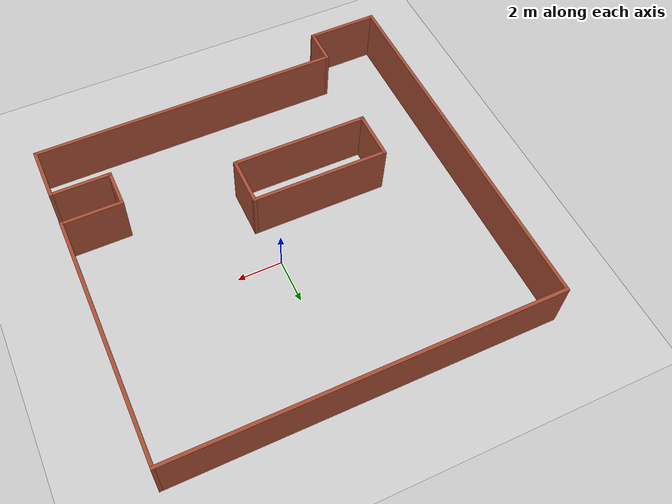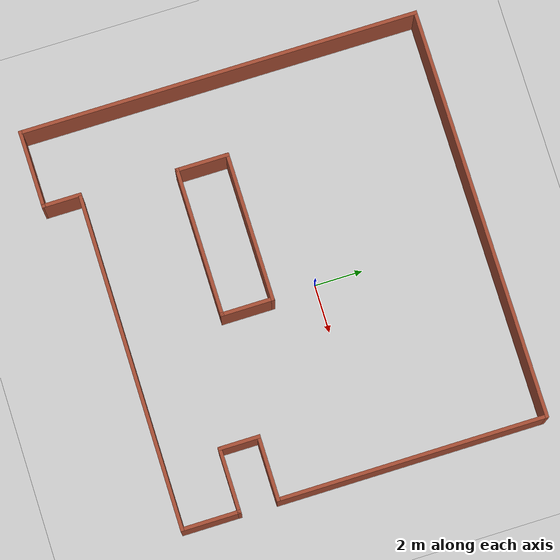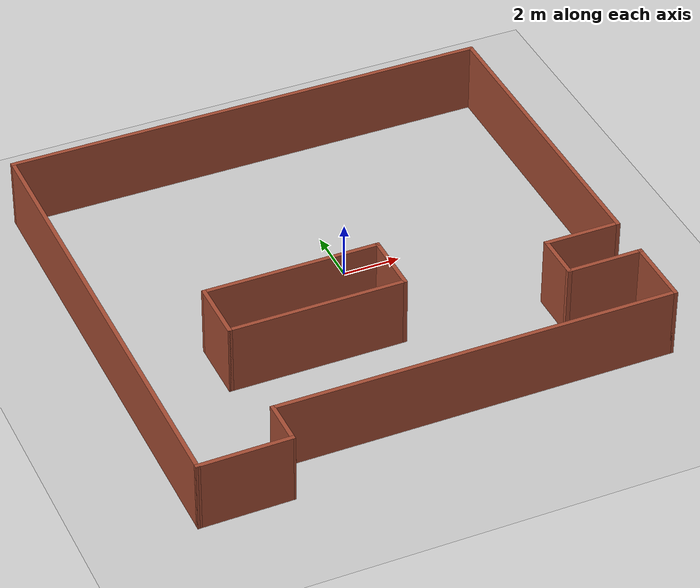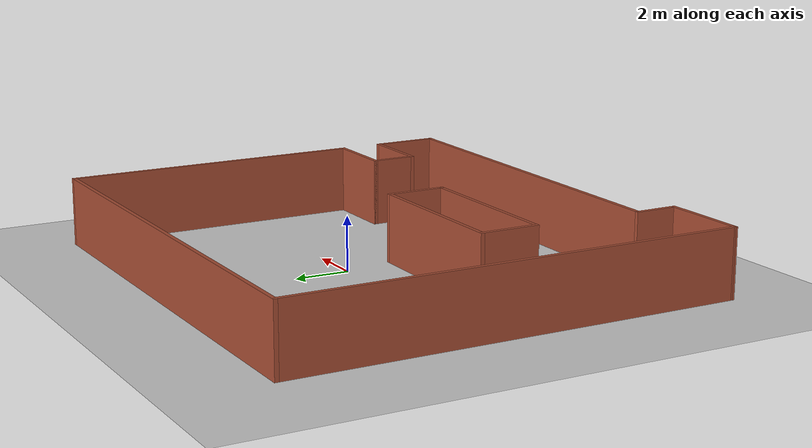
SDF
<sdf version="1.6">
 <world name="default">
  <light name="sun" type="directional">
   <pose>0 0 10 0 -0 0</pose>
   <diffuse>0.8 0.8 0.8 1</diffuse>
   <specular>0.2 0.2 0.2 1</specular>
   <attenuation>
    <range>1000</range>
    <constant>0.9</constant>
    <linear>0.01</linear>
    <quadratic>0.001</quadratic>
   </attenuation>
   <direction>-0.5 0.1 -0.9</direction>
  </light>
  <model name="ground_plane">
   <static>1</static>
   <link name="link">
    <collision name="collision">
     <geometry><plane><normal>0 0 1</normal><size>100 100</size></plane></geometry>
     <surface><friction><ode><mu>100</mu><mu2>50</mu2></ode></friction></surface>
    </collision>
    <visual name="visual">
     <cast_shadows>0</cast_shadows>
     <geometry><plane><normal>0 0 1</normal><size>100 100</size></plane></geometry>
     <material>
      <script><uri>file://media/materials/scripts/gazebo.material</uri><name>Gazebo/Grey</name></script>
     </material>
    </visual>
   </link>
  </model>
  <gravity>0 0 -9.8</gravity>
  <magnetic_field>6e-06 2.3e-05 -4.2e-05</magnetic_field>
  <atmosphere type="adiabatic"/>
  <physics name="default_physics" default="0" type="ode">
   <max_step_size>0.001</max_step_size>
   <real_time_factor>1</real_time_factor>
   <real_time_update_rate>1000</real_time_update_rate>
  </physics>
  <scene><ambient>0.4 0.4 0.4 1</ambient><background>0.7 0.7 0.7 1</background><shadows>1</shadows></scene>
  <spherical_coordinates>
   <surface_model>EARTH_WGS84</surface_model>
   <latitude_deg>0</latitude_deg>
   <longitude_deg>0</longitude_deg>
   <elevation>0</elevation>
   <heading_deg>0</heading_deg>
  </spherical_coordinates>
  <model name="room">
   <pose>-0.522336 -1.24701 0 0 -0 0</pose>
   <link name="Wall_10">
    <collision name="Wall_10_Collision">
     <geometry><box><size>17.25 0.15 2.5</size></box></geometry>
     <pose>0 0 1.25 0 -0 0</pose>
    </collision>
    <visual name="Wall_10_Visual">
     <pose>0 0 1.25 0 -0 0</pose>
     <geometry><box><size>17.25 0.15 2.5</size></box></geometry>
     <material>
      <script><uri>file://media/materials/scripts/gazebo.material</uri><name>Gazebo/Bricks</name></script>
      <ambient>1 1 1 1</ambient>
     </material>
     <meta><layer>0</layer></meta>
    </visual>
    <pose>0.000336 8.30036 0 0 -0 3.14159</pose>
   </link>
   <link name="Wall_11">
    <collision name="Wall_11_Collision">
     <geometry><box><size>16.75 0.15 2.5</size></box></geometry>
     <pose>0 0 1.25 0 -0 0</pose>
    </collision>
    <visual name="Wall_11_Visual">
     <pose>0 0 1.25 0 -0 0</pose>
     <geometry><box><size>16.75 0.15 2.5</size></box></geometry>
     <material>
      <script><uri>file://media/materials/scripts/gazebo.material</uri><name>Gazebo/Bricks</name></script>
      <ambient>1 1 1 1</ambient>
     </material>
     <meta><layer>0</layer></meta>
    </visual>
    <pose>-8.54966 0.000364 0 0 0 -1.5708</pose>
   </link>
   <link name="Wall_12">
    <collision name="Wall_12_Collision">
     <geometry><box><size>3.28063 0.15 2.5</size></box></geometry>
     <pose>0 0 1.25 0 -0 0</pose>
    </collision>
    <visual name="Wall_12_Visual">
     <pose>0 0 1.25 0 -0 0</pose>
     <geometry><box><size>3.28063 0.15 2.5</size></box></geometry>
     <material>
      <script><uri>file://media/materials/scripts/gazebo.material</uri><name>Gazebo/Bricks</name></script>
      <ambient>1 1 1 1</ambient>
     </material>
     <meta><layer>0</layer></meta>
    </visual>
    <pose>-6.98437 -8.28434 0 0 -0 0.009771</pose>
   </link>
   <link name="Wall_15">
    <collision name="Wall_15_Collision">
     <geometry><box><size>1.67 0.15 2.5</size></box></geometry>
     <pose>0 0 1.25 0 -0 0</pose>
    </collision>
    <visual name="Wall_15_Visual">
     <pose>0 0 1.25 0 -0 0</pose>
     <geometry><box><size>1.67 0.15 2.5</size></box></geometry>
     <material>
      <script><uri>file://media/materials/scripts/gazebo.material</uri><name>Gazebo/Bricks</name></script>
      <ambient>1 1 1 1</ambient>
     </material>
     <meta><layer>0</layer></meta>
    </visual>
    <pose>-5.41907 -7.50905 0 0 -0 1.5708</pose>
   </link>
   <link name="Wall_28">
    <collision name="Wall_28_Collision">
     <geometry><box><size>6.25 0.15 2.5</size></box></geometry>
     <pose>0 0 1.25 0 -0 0</pose>
    </collision>
    <visual name="Wall_28_Visual">
     <pose>0 0 1.25 0 -0 0</pose>
     <geometry><box><size>6.25 0.15 2.5</size></box></geometry>
     <material>
      <script><uri>file://media/materials/scripts/gazebo.material</uri><name>Gazebo/Bricks</name></script>
      <ambient>1 1 1 1</ambient>
     </material>
     <meta><layer>0</layer></meta>
    </visual>
    <pose>-2.17725 -2.7469 0 0 -0 0</pose>
   </link>
   <link name="Wall_29">
    <collision name="Wall_29_Collision">
     <geometry><box><size>2.25 0.15 2.5</size></box></geometry>
     <pose>0 0 1.25 0 -0 0</pose>
    </collision>
    <visual name="Wall_29_Visual">
     <pose>0 0 1.25 0 -0 0</pose>
     <geometry><box><size>2.25 0.15 2.5</size></box></geometry>
     <material>
      <script><uri>file://media/materials/scripts/gazebo.material</uri><name>Gazebo/Bricks</name></script>
      <ambient>1 1 1 1</ambient>
     </material>
     <meta><layer>0</layer></meta>
    </visual>
    <pose>0.87275 -1.6969 0 0 -0 1.5708</pose>
   </link>
   <link name="Wall_30">
    <collision name="Wall_30_Collision">
     <geometry><box><size>6.25 0.15 2.5</size></box></geometry>
     <pose>0 0 1.25 0 -0 0</pose>
    </collision>
    <visual name="Wall_30_Visual">
     <pose>0 0 1.25 0 -0 0</pose>
     <geometry><box><size>6.25 0.15 2.5</size></box></geometry>
     <material>
      <script><uri>file://media/materials/scripts/gazebo.material</uri><name>Gazebo/Bricks</name></script>
      <ambient>1 1 1 1</ambient>
     </material>
     <meta><layer>0</layer></meta>
    </visual>
    <pose>-2.17725 -0.646902 0 0 -0 3.14159</pose>
   </link>
   <link name="Wall_31">
    <collision name="Wall_31_Collision">
     <geometry><box><size>2.25 0.15 2.5</size></box></geometry>
     <pose>0 0 1.25 0 -0 0</pose>
    </collision>
    <visual name="Wall_31_Visual">
     <pose>0 0 1.25 0 -0 0</pose>
     <geometry><box><size>2.25 0.15 2.5</size></box></geometry>
     <material>
      <script><uri>file://media/materials/scripts/gazebo.material</uri><name>Gazebo/Bricks</name></script>
      <ambient>1 1 1 1</ambient>
     </material>
     <meta><layer>0</layer></meta>
    </visual>
    <pose>-5.22725 -1.6969 0 0 0 -1.5708</pose>
   </link>
   <link name="Wall_4">
    <collision name="Wall_4_Collision">
     <geometry><box><size>14 0.15 2.5</size></box></geometry>
     <pose>0 0 1.25 0 -0 0</pose>
    </collision>
    <visual name="Wall_4_Visual">
     <pose>0 0 1.25 0 -0 0</pose>
     <geometry><box><size>14 0.15 2.5</size></box></geometry>
     <material>
      <script><uri>file://media/materials/scripts/gazebo.material</uri><name>Gazebo/Bricks</name></script>
      <ambient>1 1 1 1</ambient>
     </material>
     <meta><layer>0</layer></meta>
    </visual>
    <pose>1.62534 -6.74964 0 0 -0 0</pose>
   </link>
   <link name="Wall_5">
    <collision name="Wall_5_Collision">
     <geometry><box><size>2.5 0.15 2.5</size></box></geometry>
     <pose>0 0 1.25 0 -0 0</pose>
    </collision>
    <visual name="Wall_5_Visual">
     <pose>0 0 1.25 0 -0 0</pose>
     <geometry><box><size>2.5 0.15 2.5</size></box></geometry>
     <material>
      <script><uri>file://media/materials/scripts/gazebo.material</uri><name>Gazebo/Bricks</name></script>
      <ambient>1 1 1 1</ambient>
     </material>
     <meta><layer>0</layer></meta>
    </visual>
    <pose>8.55034 -5.57464 0 0 -0 1.5708</pose>
   </link>
   <link name="Wall_6">
    <collision name="Wall_6_Collision">
     <geometry><box><size>2.75 0.15 2.5</size></box></geometry>
     <pose>0 0 1.25 0 -0 0</pose>
    </collision>
    <visual name="Wall_6_Visual">
     <pose>0 0 1.25 0 -0 0</pose>
     <geometry><box><size>2.75 0.15 2.5</size></box></geometry>
     <material>
      <script><uri>file://media/materials/scripts/gazebo.material</uri><name>Gazebo/Bricks</name></script>
      <ambient>1 1 1 1</ambient>
     </material>
     <meta><layer>0</layer></meta>
    </visual>
    <pose>7.25034 -4.39964 0 0 -0 3.14159</pose>
   </link>
   <link name="Wall_7">
    <collision name="Wall_7_Collision">
     <geometry><box><size>1.75 0.15 2.5</size></box></geometry>
     <pose>0 0 1.25 0 -0 0</pose>
    </collision>
    <visual name="Wall_7_Visual">
     <pose>0 0 1.25 0 -0 0</pose>
     <geometry><box><size>1.75 0.15 2.5</size></box></geometry>
     <material>
      <script><uri>file://media/materials/scripts/gazebo.material</uri><name>Gazebo/Bricks</name></script>
      <ambient>1 1 1 1</ambient>
     </material>
     <meta><layer>0</layer></meta>
    </visual>
    <pose>5.95034 -3.59964 0 0 -0 1.5708</pose>
   </link>
   <link name="Wall_8">
    <collision name="Wall_8_Collision">
     <geometry><box><size>2.75 0.15 2.5</size></box></geometry>
     <pose>0 0 1.25 0 -0 0</pose>
    </collision>
    <visual name="Wall_8_Visual">
     <pose>0 0 1.25 0 -0 0</pose>
     <geometry><box><size>2.75 0.15 2.5</size></box></geometry>
     <material>
      <script><uri>file://media/materials/scripts/gazebo.material</uri><name>Gazebo/Bricks</name></script>
      <ambient>1 1 1 1</ambient>
     </material>
     <meta><layer>0</layer></meta>
    </visual>
    <pose>7.25034 -2.79964 0 0 -0 0</pose>
   </link>
   <link name="Wall_9">
    <collision name="Wall_9_Collision">
     <geometry><box><size>11.25 0.15 2.5</size></box></geometry>
     <pose>0 0 1.25 0 -0 0</pose>
    </collision>
    <visual name="Wall_9_Visual">
     <pose>0 0 1.25 0 -0 0</pose>
     <geometry><box><size>11.25 0.15 2.5</size></box></geometry>
     <material>
      <script><uri>file://media/materials/scripts/gazebo.material</uri><name>Gazebo/Bricks</name></script>
      <ambient>1 1 1 1</ambient>
     </material>
     <meta><layer>0</layer></meta>
    </visual>
    <pose>8.55034 2.75036 0 0 -0 1.5708</pose>
   </link>
   <static>1</static>
  </model>
 </world>
</sdf>
